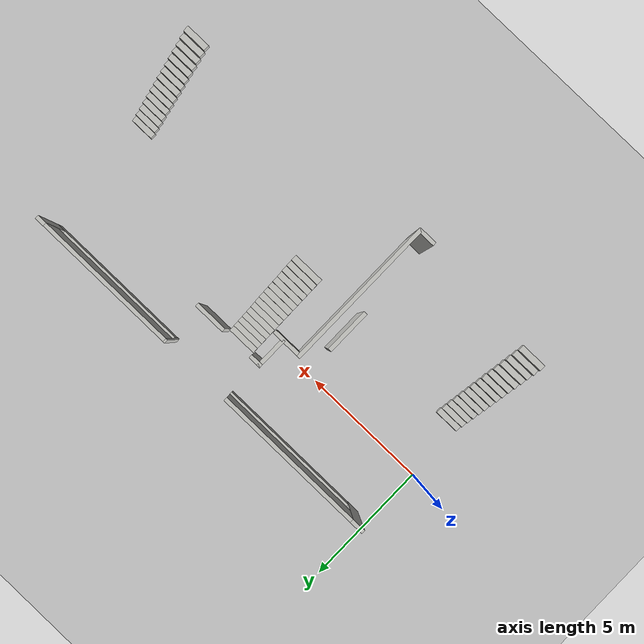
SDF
<sdf version="1.7">
 <world name="default">
  <model name="ground_plane">
   <static>1</static>
   <link name="link">
    <collision name="collision">
     <geometry><plane><normal>0 0 1</normal><size>100 100</size></plane></geometry>
     <surface>
      <contact><collide_bitmask>65535</collide_bitmask></contact>
      <friction><ode><mu>100</mu><mu2>50</mu2></ode></friction>
     </surface>
    </collision>
    <visual name="visual">
     <cast_shadows>0</cast_shadows>
     <geometry><plane><normal>0 0 1</normal><size>100 100</size></plane></geometry>
     <material>
      <script><uri>file://media/materials/scripts/gazebo.material</uri><name>Gazebo/Grey</name></script>
     </material>
    </visual>
   </link>
  </model>
  <model name="SUST_IICT">
   <pose>8.32781 0.748146 0 0 -0 0</pose>
   <link name="Stairs_0">
    <visual name="Stairs_0_Visual_0">
     <pose>-0.342216 -0.026603 0.083333 0 -0 0</pose>
     <geometry><box><size>1.2128 0.233333 0.166667</size></box></geometry>
     <material>
      <script><uri>file://media/materials/scripts/gazebo.material</uri><name>Gazebo/CeilingTiled</name></script>
      <ambient>1 0.764706 0.305882 1</ambient>
     </material>
     <meta><layer>0</layer></meta>
    </visual>
    <collision name="Stairs_0_Collision_0">
     <geometry><box><size>1.2128 0.233333 0.166667</size></box></geometry>
     <pose>-0.342216 -0.026603 0.083333 0 -0 0</pose>
    </collision>
    <visual name="Stairs_0_Visual_1">
     <pose>-0.342216 -0.259936 0.25 0 -0 0</pose>
     <geometry><box><size>1.2128 0.233333 0.166667</size></box></geometry>
     <material>
      <script><uri>file://media/materials/scripts/gazebo.material</uri><name>Gazebo/CeilingTiled</name></script>
      <ambient>1 0.764706 0.305882 1</ambient>
     </material>
     <meta><layer>0</layer></meta>
    </visual>
    <collision name="Stairs_0_Collision_1">
     <geometry><box><size>1.2128 0.233333 0.166667</size></box></geometry>
     <pose>-0.342216 -0.259936 0.25 0 -0 0</pose>
    </collision>
    <visual name="Stairs_0_Visual_2">
     <pose>-0.342216 -0.49327 0.416667 0 -0 0</pose>
     <geometry><box><size>1.2128 0.233333 0.166667</size></box></geometry>
     <material>
      <script><uri>file://media/materials/scripts/gazebo.material</uri><name>Gazebo/CeilingTiled</name></script>
      <ambient>1 0.764706 0.305882 1</ambient>
     </material>
     <meta><layer>0</layer></meta>
    </visual>
    <collision name="Stairs_0_Collision_2">
     <geometry><box><size>1.2128 0.233333 0.166667</size></box></geometry>
     <pose>-0.342216 -0.49327 0.416667 0 -0 0</pose>
    </collision>
    <visual name="Stairs_0_Visual_3">
     <pose>-0.342216 -0.726603 0.583333 0 -0 0</pose>
     <geometry><box><size>1.2128 0.233333 0.166667</size></box></geometry>
     <material>
      <script><uri>file://media/materials/scripts/gazebo.material</uri><name>Gazebo/CeilingTiled</name></script>
      <ambient>1 0.764706 0.305882 1</ambient>
     </material>
     <meta><layer>0</layer></meta>
    </visual>
    <collision name="Stairs_0_Collision_3">
     <geometry><box><size>1.2128 0.233333 0.166667</size></box></geometry>
     <pose>-0.342216 -0.726603 0.583333 0 -0 0</pose>
    </collision>
    <visual name="Stairs_0_Visual_4">
     <pose>-0.342216 -0.959937 0.75 0 -0 0</pose>
     <geometry><box><size>1.2128 0.233333 0.166667</size></box></geometry>
     <material>
      <script><uri>file://media/materials/scripts/gazebo.material</uri><name>Gazebo/CeilingTiled</name></script>
      <ambient>1 0.764706 0.305882 1</ambient>
     </material>
     <meta><layer>0</layer></meta>
    </visual>
    <collision name="Stairs_0_Collision_4">
     <geometry><box><size>1.2128 0.233333 0.166667</size></box></geometry>
     <pose>-0.342216 -0.959937 0.75 0 -0 0</pose>
    </collision>
    <visual name="Stairs_0_Visual_5">
     <pose>-0.342216 -1.19327 0.916667 0 -0 0</pose>
     <geometry><box><size>1.2128 0.233333 0.166667</size></box></geometry>
     <material>
      <script><uri>file://media/materials/scripts/gazebo.material</uri><name>Gazebo/CeilingTiled</name></script>
      <ambient>1 0.764706 0.305882 1</ambient>
     </material>
     <meta><layer>0</layer></meta>
    </visual>
    <collision name="Stairs_0_Collision_5">
     <geometry><box><size>1.2128 0.233333 0.166667</size></box></geometry>
     <pose>-0.342216 -1.19327 0.916667 0 -0 0</pose>
    </collision>
    <visual name="Stairs_0_Visual_6">
     <pose>-0.342216 -1.4266 1.08333 0 -0 0</pose>
     <geometry><box><size>1.2128 0.233333 0.166667</size></box></geometry>
     <material>
      <script><uri>file://media/materials/scripts/gazebo.material</uri><name>Gazebo/CeilingTiled</name></script>
      <ambient>1 0.764706 0.305882 1</ambient>
     </material>
     <meta><layer>0</layer></meta>
    </visual>
    <collision name="Stairs_0_Collision_6">
     <geometry><box><size>1.2128 0.233333 0.166667</size></box></geometry>
     <pose>-0.342216 -1.4266 1.08333 0 -0 0</pose>
    </collision>
    <visual name="Stairs_0_Visual_7">
     <pose>-0.342216 -1.65994 1.25 0 -0 0</pose>
     <geometry><box><size>1.2128 0.233333 0.166667</size></box></geometry>
     <material>
      <script><uri>file://media/materials/scripts/gazebo.material</uri><name>Gazebo/CeilingTiled</name></script>
      <ambient>1 0.764706 0.305882 1</ambient>
     </material>
     <meta><layer>0</layer></meta>
    </visual>
    <collision name="Stairs_0_Collision_7">
     <geometry><box><size>1.2128 0.233333 0.166667</size></box></geometry>
     <pose>-0.342216 -1.65994 1.25 0 -0 0</pose>
    </collision>
    <visual name="Stairs_0_Visual_8">
     <pose>-0.342216 -1.89327 1.41667 0 -0 0</pose>
     <geometry><box><size>1.2128 0.233333 0.166667</size></box></geometry>
     <material>
      <script><uri>file://media/materials/scripts/gazebo.material</uri><name>Gazebo/CeilingTiled</name></script>
      <ambient>1 0.764706 0.305882 1</ambient>
     </material>
     <meta><layer>0</layer></meta>
    </visual>
    <collision name="Stairs_0_Collision_8">
     <geometry><box><size>1.2128 0.233333 0.166667</size></box></geometry>
     <pose>-0.342216 -1.89327 1.41667 0 -0 0</pose>
    </collision>
    <visual name="Stairs_0_Visual_9">
     <pose>-0.342216 -2.1266 1.58333 0 -0 0</pose>
     <geometry><box><size>1.2128 0.233333 0.166667</size></box></geometry>
     <material>
      <script><uri>file://media/materials/scripts/gazebo.material</uri><name>Gazebo/CeilingTiled</name></script>
      <ambient>1 0.764706 0.305882 1</ambient>
     </material>
     <meta><layer>0</layer></meta>
    </visual>
    <collision name="Stairs_0_Collision_9">
     <geometry><box><size>1.2128 0.233333 0.166667</size></box></geometry>
     <pose>-0.342216 -2.1266 1.58333 0 -0 0</pose>
    </collision>
    <visual name="Stairs_0_Visual_10">
     <pose>-0.342216 -2.35994 1.75 0 -0 0</pose>
     <geometry><box><size>1.2128 0.233333 0.166667</size></box></geometry>
     <material>
      <script><uri>file://media/materials/scripts/gazebo.material</uri><name>Gazebo/CeilingTiled</name></script>
      <ambient>1 0.764706 0.305882 1</ambient>
     </material>
     <meta><layer>0</layer></meta>
    </visual>
    <collision name="Stairs_0_Collision_10">
     <geometry><box><size>1.2128 0.233333 0.166667</size></box></geometry>
     <pose>-0.342216 -2.35994 1.75 0 -0 0</pose>
    </collision>
    <visual name="Stairs_0_Visual_11">
     <pose>-0.342216 -2.59327 1.91667 0 -0 0</pose>
     <geometry><box><size>1.2128 0.233333 0.166667</size></box></geometry>
     <material>
      <script><uri>file://media/materials/scripts/gazebo.material</uri><name>Gazebo/CeilingTiled</name></script>
      <ambient>1 0.764706 0.305882 1</ambient>
     </material>
     <meta><layer>0</layer></meta>
    </visual>
    <collision name="Stairs_0_Collision_11">
     <geometry><box><size>1.2128 0.233333 0.166667</size></box></geometry>
     <pose>-0.342216 -2.59327 1.91667 0 -0 0</pose>
    </collision>
    <visual name="Stairs_0_Visual_12">
     <pose>-0.342216 -2.8266 2.08333 0 -0 0</pose>
     <geometry><box><size>1.2128 0.233333 0.166667</size></box></geometry>
     <material>
      <script><uri>file://media/materials/scripts/gazebo.material</uri><name>Gazebo/CeilingTiled</name></script>
      <ambient>1 0.764706 0.305882 1</ambient>
     </material>
     <meta><layer>0</layer></meta>
    </visual>
    <collision name="Stairs_0_Collision_12">
     <geometry><box><size>1.2128 0.233333 0.166667</size></box></geometry>
     <pose>-0.342216 -2.8266 2.08333 0 -0 0</pose>
    </collision>
    <visual name="Stairs_0_Visual_13">
     <pose>-0.342216 -3.05994 2.25 0 -0 0</pose>
     <geometry><box><size>1.2128 0.233333 0.166667</size></box></geometry>
     <material>
      <script><uri>file://media/materials/scripts/gazebo.material</uri><name>Gazebo/CeilingTiled</name></script>
      <ambient>1 0.764706 0.305882 1</ambient>
     </material>
     <meta><layer>0</layer></meta>
    </visual>
    <collision name="Stairs_0_Collision_13">
     <geometry><box><size>1.2128 0.233333 0.166667</size></box></geometry>
     <pose>-0.342216 -3.05994 2.25 0 -0 0</pose>
    </collision>
    <visual name="Stairs_0_Visual_14">
     <pose>-0.342216 -3.29327 2.41667 0 -0 0</pose>
     <geometry><box><size>1.2128 0.233333 0.166667</size></box></geometry>
     <material>
      <script><uri>file://media/materials/scripts/gazebo.material</uri><name>Gazebo/CeilingTiled</name></script>
      <ambient>1 0.764706 0.305882 1</ambient>
     </material>
     <meta><layer>0</layer></meta>
    </visual>
    <collision name="Stairs_0_Collision_14">
     <geometry><box><size>1.2128 0.233333 0.166667</size></box></geometry>
     <pose>-0.342216 -3.29327 2.41667 0 -0 0</pose>
    </collision>
   </link>
   <link name="Stairs_1">
    <visual name="Stairs_1_Visual_0">
     <pose>-7.84347 -3.13883 0.083333 0 -0 0</pose>
     <geometry><box><size>1 0.233333 0.166667</size></box></geometry>
     <material>
      <script><uri>file://media/materials/scripts/gazebo.material</uri><name>Gazebo/CeilingTiled</name></script>
      <ambient>1 0.764706 0.305882 1</ambient>
     </material>
     <meta><layer>0</layer></meta>
    </visual>
    <collision name="Stairs_1_Collision_0">
     <geometry><box><size>1 0.233333 0.166667</size></box></geometry>
     <pose>-7.84347 -3.13883 0.083333 0 -0 0</pose>
    </collision>
    <visual name="Stairs_1_Visual_1">
     <pose>-7.84347 -3.37216 0.25 0 -0 0</pose>
     <geometry><box><size>1 0.233333 0.166667</size></box></geometry>
     <material>
      <script><uri>file://media/materials/scripts/gazebo.material</uri><name>Gazebo/CeilingTiled</name></script>
      <ambient>1 0.764706 0.305882 1</ambient>
     </material>
     <meta><layer>0</layer></meta>
    </visual>
    <collision name="Stairs_1_Collision_1">
     <geometry><box><size>1 0.233333 0.166667</size></box></geometry>
     <pose>-7.84347 -3.37216 0.25 0 -0 0</pose>
    </collision>
    <visual name="Stairs_1_Visual_2">
     <pose>-7.84347 -3.60549 0.416667 0 -0 0</pose>
     <geometry><box><size>1 0.233333 0.166667</size></box></geometry>
     <material>
      <script><uri>file://media/materials/scripts/gazebo.material</uri><name>Gazebo/CeilingTiled</name></script>
      <ambient>1 0.764706 0.305882 1</ambient>
     </material>
     <meta><layer>0</layer></meta>
    </visual>
    <collision name="Stairs_1_Collision_2">
     <geometry><box><size>1 0.233333 0.166667</size></box></geometry>
     <pose>-7.84347 -3.60549 0.416667 0 -0 0</pose>
    </collision>
    <visual name="Stairs_1_Visual_3">
     <pose>-7.84347 -3.83883 0.583333 0 -0 0</pose>
     <geometry><box><size>1 0.233333 0.166667</size></box></geometry>
     <material>
      <script><uri>file://media/materials/scripts/gazebo.material</uri><name>Gazebo/CeilingTiled</name></script>
      <ambient>1 0.764706 0.305882 1</ambient>
     </material>
     <meta><layer>0</layer></meta>
    </visual>
    <collision name="Stairs_1_Collision_3">
     <geometry><box><size>1 0.233333 0.166667</size></box></geometry>
     <pose>-7.84347 -3.83883 0.583333 0 -0 0</pose>
    </collision>
    <visual name="Stairs_1_Visual_4">
     <pose>-7.84347 -4.07216 0.75 0 -0 0</pose>
     <geometry><box><size>1 0.233333 0.166667</size></box></geometry>
     <material>
      <script><uri>file://media/materials/scripts/gazebo.material</uri><name>Gazebo/CeilingTiled</name></script>
      <ambient>1 0.764706 0.305882 1</ambient>
     </material>
     <meta><layer>0</layer></meta>
    </visual>
    <collision name="Stairs_1_Collision_4">
     <geometry><box><size>1 0.233333 0.166667</size></box></geometry>
     <pose>-7.84347 -4.07216 0.75 0 -0 0</pose>
    </collision>
    <visual name="Stairs_1_Visual_5">
     <pose>-7.84347 -4.30549 0.916667 0 -0 0</pose>
     <geometry><box><size>1 0.233333 0.166667</size></box></geometry>
     <material>
      <script><uri>file://media/materials/scripts/gazebo.material</uri><name>Gazebo/CeilingTiled</name></script>
      <ambient>1 0.764706 0.305882 1</ambient>
     </material>
     <meta><layer>0</layer></meta>
    </visual>
    <collision name="Stairs_1_Collision_5">
     <geometry><box><size>1 0.233333 0.166667</size></box></geometry>
     <pose>-7.84347 -4.30549 0.916667 0 -0 0</pose>
    </collision>
    <visual name="Stairs_1_Visual_6">
     <pose>-7.84347 -4.53883 1.08333 0 -0 0</pose>
     <geometry><box><size>1 0.233333 0.166667</size></box></geometry>
     <material>
      <script><uri>file://media/materials/scripts/gazebo.material</uri><name>Gazebo/CeilingTiled</name></script>
      <ambient>1 0.764706 0.305882 1</ambient>
     </material>
     <meta><layer>0</layer></meta>
    </visual>
    <collision name="Stairs_1_Collision_6">
     <geometry><box><size>1 0.233333 0.166667</size></box></geometry>
     <pose>-7.84347 -4.53883 1.08333 0 -0 0</pose>
    </collision>
    <visual name="Stairs_1_Visual_7">
     <pose>-7.84347 -4.77216 1.25 0 -0 0</pose>
     <geometry><box><size>1 0.233333 0.166667</size></box></geometry>
     <material>
      <script><uri>file://media/materials/scripts/gazebo.material</uri><name>Gazebo/CeilingTiled</name></script>
      <ambient>1 0.764706 0.305882 1</ambient>
     </material>
     <meta><layer>0</layer></meta>
    </visual>
    <collision name="Stairs_1_Collision_7">
     <geometry><box><size>1 0.233333 0.166667</size></box></geometry>
     <pose>-7.84347 -4.77216 1.25 0 -0 0</pose>
    </collision>
    <visual name="Stairs_1_Visual_8">
     <pose>-7.84347 -5.00549 1.41667 0 -0 0</pose>
     <geometry><box><size>1 0.233333 0.166667</size></box></geometry>
     <material>
      <script><uri>file://media/materials/scripts/gazebo.material</uri><name>Gazebo/CeilingTiled</name></script>
      <ambient>1 0.764706 0.305882 1</ambient>
     </material>
     <meta><layer>0</layer></meta>
    </visual>
    <collision name="Stairs_1_Collision_8">
     <geometry><box><size>1 0.233333 0.166667</size></box></geometry>
     <pose>-7.84347 -5.00549 1.41667 0 -0 0</pose>
    </collision>
    <visual name="Stairs_1_Visual_9">
     <pose>-7.84347 -5.23883 1.58333 0 -0 0</pose>
     <geometry><box><size>1 0.233333 0.166667</size></box></geometry>
     <material>
      <script><uri>file://media/materials/scripts/gazebo.material</uri><name>Gazebo/CeilingTiled</name></script>
      <ambient>1 0.764706 0.305882 1</ambient>
     </material>
     <meta><layer>0</layer></meta>
    </visual>
    <collision name="Stairs_1_Collision_9">
     <geometry><box><size>1 0.233333 0.166667</size></box></geometry>
     <pose>-7.84347 -5.23883 1.58333 0 -0 0</pose>
    </collision>
    <visual name="Stairs_1_Visual_10">
     <pose>-7.84347 -5.47216 1.75 0 -0 0</pose>
     <geometry><box><size>1 0.233333 0.166667</size></box></geometry>
     <material>
      <script><uri>file://media/materials/scripts/gazebo.material</uri><name>Gazebo/CeilingTiled</name></script>
      <ambient>1 0.764706 0.305882 1</ambient>
     </material>
     <meta><layer>0</layer></meta>
    </visual>
    <collision name="Stairs_1_Collision_10">
     <geometry><box><size>1 0.233333 0.166667</size></box></geometry>
     <pose>-7.84347 -5.47216 1.75 0 -0 0</pose>
    </collision>
    <visual name="Stairs_1_Visual_11">
     <pose>-7.84347 -5.70549 1.91667 0 -0 0</pose>
     <geometry><box><size>1 0.233333 0.166667</size></box></geometry>
     <material>
      <script><uri>file://media/materials/scripts/gazebo.material</uri><name>Gazebo/CeilingTiled</name></script>
      <ambient>1 0.764706 0.305882 1</ambient>
     </material>
     <meta><layer>0</layer></meta>
    </visual>
    <collision name="Stairs_1_Collision_11">
     <geometry><box><size>1 0.233333 0.166667</size></box></geometry>
     <pose>-7.84347 -5.70549 1.91667 0 -0 0</pose>
    </collision>
    <visual name="Stairs_1_Visual_12">
     <pose>-7.84347 -5.93883 2.08333 0 -0 0</pose>
     <geometry><box><size>1 0.233333 0.166667</size></box></geometry>
     <material>
      <script><uri>file://media/materials/scripts/gazebo.material</uri><name>Gazebo/CeilingTiled</name></script>
      <ambient>1 0.764706 0.305882 1</ambient>
     </material>
     <meta><layer>0</layer></meta>
    </visual>
    <collision name="Stairs_1_Collision_12">
     <geometry><box><size>1 0.233333 0.166667</size></box></geometry>
     <pose>-7.84347 -5.93883 2.08333 0 -0 0</pose>
    </collision>
    <visual name="Stairs_1_Visual_13">
     <pose>-7.84347 -6.17216 2.25 0 -0 0</pose>
     <geometry><box><size>1 0.233333 0.166667</size></box></geometry>
     <material>
      <script><uri>file://media/materials/scripts/gazebo.material</uri><name>Gazebo/CeilingTiled</name></script>
      <ambient>1 0.764706 0.305882 1</ambient>
     </material>
     <meta><layer>0</layer></meta>
    </visual>
    <collision name="Stairs_1_Collision_13">
     <geometry><box><size>1 0.233333 0.166667</size></box></geometry>
     <pose>-7.84347 -6.17216 2.25 0 -0 0</pose>
    </collision>
    <visual name="Stairs_1_Visual_14">
     <pose>-7.84347 -6.40549 2.41667 0 -0 0</pose>
     <geometry><box><size>1 0.233333 0.166667</size></box></geometry>
     <material>
      <script><uri>file://media/materials/scripts/gazebo.material</uri><name>Gazebo/CeilingTiled</name></script>
      <ambient>1 0.764706 0.305882 1</ambient>
     </material>
     <meta><layer>0</layer></meta>
    </visual>
    <collision name="Stairs_1_Collision_14">
     <geometry><box><size>1 0.233333 0.166667</size></box></geometry>
     <pose>-7.84347 -6.40549 2.41667 0 -0 0</pose>
    </collision>
   </link>
   <link name="Stairs_2">
    <visual name="Stairs_2_Visual_0">
     <pose>7.78414 -3.11134 0.083333 0 -0 0</pose>
     <geometry><box><size>0.9734 0.23156 0.166667</size></box></geometry>
     <material>
      <script><uri>file://media/materials/scripts/gazebo.material</uri><name>Gazebo/CeilingTiled</name></script>
      <ambient>1 0.764706 0.305882 1</ambient>
     </material>
     <meta><layer>0</layer></meta>
    </visual>
    <collision name="Stairs_2_Collision_0">
     <geometry><box><size>0.9734 0.23156 0.166667</size></box></geometry>
     <pose>7.78414 -3.11134 0.083333 0 -0 0</pose>
    </collision>
    <visual name="Stairs_2_Visual_1">
     <pose>7.78414 -3.3429 0.25 0 -0 0</pose>
     <geometry><box><size>0.9734 0.23156 0.166667</size></box></geometry>
     <material>
      <script><uri>file://media/materials/scripts/gazebo.material</uri><name>Gazebo/CeilingTiled</name></script>
      <ambient>1 0.764706 0.305882 1</ambient>
     </material>
     <meta><layer>0</layer></meta>
    </visual>
    <collision name="Stairs_2_Collision_1">
     <geometry><box><size>0.9734 0.23156 0.166667</size></box></geometry>
     <pose>7.78414 -3.3429 0.25 0 -0 0</pose>
    </collision>
    <visual name="Stairs_2_Visual_2">
     <pose>7.78414 -3.57446 0.416667 0 -0 0</pose>
     <geometry><box><size>0.9734 0.23156 0.166667</size></box></geometry>
     <material>
      <script><uri>file://media/materials/scripts/gazebo.material</uri><name>Gazebo/CeilingTiled</name></script>
      <ambient>1 0.764706 0.305882 1</ambient>
     </material>
     <meta><layer>0</layer></meta>
    </visual>
    <collision name="Stairs_2_Collision_2">
     <geometry><box><size>0.9734 0.23156 0.166667</size></box></geometry>
     <pose>7.78414 -3.57446 0.416667 0 -0 0</pose>
    </collision>
    <visual name="Stairs_2_Visual_3">
     <pose>7.78414 -3.80602 0.583333 0 -0 0</pose>
     <geometry><box><size>0.9734 0.23156 0.166667</size></box></geometry>
     <material>
      <script><uri>file://media/materials/scripts/gazebo.material</uri><name>Gazebo/CeilingTiled</name></script>
      <ambient>1 0.764706 0.305882 1</ambient>
     </material>
     <meta><layer>0</layer></meta>
    </visual>
    <collision name="Stairs_2_Collision_3">
     <geometry><box><size>0.9734 0.23156 0.166667</size></box></geometry>
     <pose>7.78414 -3.80602 0.583333 0 -0 0</pose>
    </collision>
    <visual name="Stairs_2_Visual_4">
     <pose>7.78414 -4.03758 0.75 0 -0 0</pose>
     <geometry><box><size>0.9734 0.23156 0.166667</size></box></geometry>
     <material>
      <script><uri>file://media/materials/scripts/gazebo.material</uri><name>Gazebo/CeilingTiled</name></script>
      <ambient>1 0.764706 0.305882 1</ambient>
     </material>
     <meta><layer>0</layer></meta>
    </visual>
    <collision name="Stairs_2_Collision_4">
     <geometry><box><size>0.9734 0.23156 0.166667</size></box></geometry>
     <pose>7.78414 -4.03758 0.75 0 -0 0</pose>
    </collision>
    <visual name="Stairs_2_Visual_5">
     <pose>7.78414 -4.26914 0.916667 0 -0 0</pose>
     <geometry><box><size>0.9734 0.23156 0.166667</size></box></geometry>
     <material>
      <script><uri>file://media/materials/scripts/gazebo.material</uri><name>Gazebo/CeilingTiled</name></script>
      <ambient>1 0.764706 0.305882 1</ambient>
     </material>
     <meta><layer>0</layer></meta>
    </visual>
    <collision name="Stairs_2_Collision_5">
     <geometry><box><size>0.9734 0.23156 0.166667</size></box></geometry>
     <pose>7.78414 -4.26914 0.916667 0 -0 0</pose>
    </collision>
    <visual name="Stairs_2_Visual_6">
     <pose>7.78414 -4.5007 1.08333 0 -0 0</pose>
     <geometry><box><size>0.9734 0.23156 0.166667</size></box></geometry>
     <material>
      <script><uri>file://media/materials/scripts/gazebo.material</uri><name>Gazebo/CeilingTiled</name></script>
      <ambient>1 0.764706 0.305882 1</ambient>
     </material>
     <meta><layer>0</layer></meta>
    </visual>
    <collision name="Stairs_2_Collision_6">
     <geometry><box><size>0.9734 0.23156 0.166667</size></box></geometry>
     <pose>7.78414 -4.5007 1.08333 0 -0 0</pose>
    </collision>
    <visual name="Stairs_2_Visual_7">
     <pose>7.78414 -4.73226 1.25 0 -0 0</pose>
     <geometry><box><size>0.9734 0.23156 0.166667</size></box></geometry>
     <material>
      <script><uri>file://media/materials/scripts/gazebo.material</uri><name>Gazebo/CeilingTiled</name></script>
      <ambient>1 0.764706 0.305882 1</ambient>
     </material>
     <meta><layer>0</layer></meta>
    </visual>
    <collision name="Stairs_2_Collision_7">
     <geometry><box><size>0.9734 0.23156 0.166667</size></box></geometry>
     <pose>7.78414 -4.73226 1.25 0 -0 0</pose>
    </collision>
    <visual name="Stairs_2_Visual_8">
     <pose>7.78414 -4.96382 1.41667 0 -0 0</pose>
     <geometry><box><size>0.9734 0.23156 0.166667</size></box></geometry>
     <material>
      <script><uri>file://media/materials/scripts/gazebo.material</uri><name>Gazebo/CeilingTiled</name></script>
      <ambient>1 0.764706 0.305882 1</ambient>
     </material>
     <meta><layer>0</layer></meta>
    </visual>
    <collision name="Stairs_2_Collision_8">
     <geometry><box><size>0.9734 0.23156 0.166667</size></box></geometry>
     <pose>7.78414 -4.96382 1.41667 0 -0 0</pose>
    </collision>
    <visual name="Stairs_2_Visual_9">
     <pose>7.78414 -5.19538 1.58333 0 -0 0</pose>
     <geometry><box><size>0.9734 0.23156 0.166667</size></box></geometry>
     <material>
      <script><uri>file://media/materials/scripts/gazebo.material</uri><name>Gazebo/CeilingTiled</name></script>
      <ambient>1 0.764706 0.305882 1</ambient>
     </material>
     <meta><layer>0</layer></meta>
    </visual>
    <collision name="Stairs_2_Collision_9">
     <geometry><box><size>0.9734 0.23156 0.166667</size></box></geometry>
     <pose>7.78414 -5.19538 1.58333 0 -0 0</pose>
    </collision>
    <visual name="Stairs_2_Visual_10">
     <pose>7.78414 -5.42694 1.75 0 -0 0</pose>
     <geometry><box><size>0.9734 0.23156 0.166667</size></box></geometry>
     <material>
      <script><uri>file://media/materials/scripts/gazebo.material</uri><name>Gazebo/CeilingTiled</name></script>
      <ambient>1 0.764706 0.305882 1</ambient>
     </material>
     <meta><layer>0</layer></meta>
    </visual>
    <collision name="Stairs_2_Collision_10">
     <geometry><box><size>0.9734 0.23156 0.166667</size></box></geometry>
     <pose>7.78414 -5.42694 1.75 0 -0 0</pose>
    </collision>
    <visual name="Stairs_2_Visual_11">
     <pose>7.78414 -5.6585 1.91667 0 -0 0</pose>
     <geometry><box><size>0.9734 0.23156 0.166667</size></box></geometry>
     <material>
      <script><uri>file://media/materials/scripts/gazebo.material</uri><name>Gazebo/CeilingTiled</name></script>
      <ambient>1 0.764706 0.305882 1</ambient>
     </material>
     <meta><layer>0</layer></meta>
    </visual>
    <collision name="Stairs_2_Collision_11">
     <geometry><box><size>0.9734 0.23156 0.166667</size></box></geometry>
     <pose>7.78414 -5.6585 1.91667 0 -0 0</pose>
    </collision>
    <visual name="Stairs_2_Visual_12">
     <pose>7.78414 -5.89006 2.08333 0 -0 0</pose>
     <geometry><box><size>0.9734 0.23156 0.166667</size></box></geometry>
     <material>
      <script><uri>file://media/materials/scripts/gazebo.material</uri><name>Gazebo/CeilingTiled</name></script>
      <ambient>1 0.764706 0.305882 1</ambient>
     </material>
     <meta><layer>0</layer></meta>
    </visual>
    <collision name="Stairs_2_Collision_12">
     <geometry><box><size>0.9734 0.23156 0.166667</size></box></geometry>
     <pose>7.78414 -5.89006 2.08333 0 -0 0</pose>
    </collision>
    <visual name="Stairs_2_Visual_13">
     <pose>7.78414 -6.12162 2.25 0 -0 0</pose>
     <geometry><box><size>0.9734 0.23156 0.166667</size></box></geometry>
     <material>
      <script><uri>file://media/materials/scripts/gazebo.material</uri><name>Gazebo/CeilingTiled</name></script>
      <ambient>1 0.764706 0.305882 1</ambient>
     </material>
     <meta><layer>0</layer></meta>
    </visual>
    <collision name="Stairs_2_Collision_13">
     <geometry><box><size>0.9734 0.23156 0.166667</size></box></geometry>
     <pose>7.78414 -6.12162 2.25 0 -0 0</pose>
    </collision>
    <visual name="Stairs_2_Visual_14">
     <pose>7.78414 -6.35318 2.41667 0 -0 0</pose>
     <geometry><box><size>0.9734 0.23156 0.166667</size></box></geometry>
     <material>
      <script><uri>file://media/materials/scripts/gazebo.material</uri><name>Gazebo/CeilingTiled</name></script>
      <ambient>1 0.764706 0.305882 1</ambient>
     </material>
     <meta><layer>0</layer></meta>
    </visual>
    <collision name="Stairs_2_Collision_14">
     <geometry><box><size>0.9734 0.23156 0.166667</size></box></geometry>
     <pose>7.78414 -6.35318 2.41667 0 -0 0</pose>
    </collision>
   </link>
   <link name="Wall_147">
    <collision name="Wall_147_Collision">
     <geometry><box><size>0.5 0.15 2.5</size></box></geometry>
     <pose>0 0 1.25 0 -0 0</pose>
    </collision>
    <visual name="Wall_147_Visual">
     <pose>0 0 1.25 0 -0 0</pose>
     <geometry><box><size>0.5 0.15 2.5</size></box></geometry>
     <material>
      <script><uri>file://media/materials/scripts/gazebo.material</uri><name>Gazebo/CeilingTiled</name></script>
      <ambient>1 0.764706 0.305882 1</ambient>
     </material>
     <meta><layer>0</layer></meta>
    </visual>
    <pose>-1.24107 0.100337 0 0 -0 0</pose>
   </link>
   <link name="Wall_149">
    <collision name="Wall_149_Collision">
     <geometry><box><size>1.25 0.15 2.5</size></box></geometry>
     <pose>0 0 1.25 0 -0 0</pose>
    </collision>
    <visual name="Wall_149_Visual">
     <pose>0 0 1.25 0 -0 0</pose>
     <geometry><box><size>1.25 0.15 2.5</size></box></geometry>
     <material>
      <script><uri>file://media/materials/scripts/gazebo.material</uri><name>Gazebo/CeilingTiled</name></script>
      <ambient>1 0.764706 0.305882 1</ambient>
     </material>
     <meta><layer>0</layer></meta>
    </visual>
    <pose>0.883935 0.100337 0 0 -0 3.14159</pose>
   </link>
   <link name="Wall_151">
    <collision name="Wall_151_Collision">
     <geometry><box><size>1.25 0.15 2.5</size></box></geometry>
     <pose>0 0 1.25 0 -0 0</pose>
    </collision>
    <visual name="Wall_151_Visual">
     <pose>0 0 1.25 0 -0 0</pose>
     <geometry><box><size>1.25 0.15 2.5</size></box></geometry>
     <material>
      <script><uri>file://media/materials/scripts/gazebo.material</uri><name>Gazebo/CeilingTiled</name></script>
      <ambient>1 0.764706 0.305882 1</ambient>
     </material>
     <meta><layer>0</layer></meta>
    </visual>
    <pose>-1.625 -1.05897 0 0 -0 0</pose>
   </link>
   <link name="Wall_37">
    <collision name="Wall_37_Collision">
     <geometry><box><size>6 0.15 2.5</size></box></geometry>
     <pose>0 0 1.25 0 -0 0</pose>
    </collision>
    <visual name="Wall_37_Visual">
     <pose>0 0 1.25 0 -0 0</pose>
     <geometry><box><size>6 0.15 2.5</size></box></geometry>
     <material>
      <script><uri>file://media/materials/scripts/gazebo.material</uri><name>Gazebo/CeilingTiled</name></script>
      <ambient>1 0.764706 0.305882 1</ambient>
     </material>
     <meta><layer>0</layer></meta>
    </visual>
    <pose>-2.175 -3.98397 0 0 -0 -1.5708</pose>
   </link>
   <link name="Wall_38">
    <collision name="Wall_38_Collision">
     <geometry><box><size>0.75 0.15 2.5</size></box></geometry>
     <pose>0 0 1.25 0 -0 0</pose>
    </collision>
    <visual name="Wall_38_Visual">
     <pose>0 0 1.25 0 -0 0</pose>
     <geometry><box><size>0.75 0.15 2.5</size></box></geometry>
     <material>
      <script><uri>file://media/materials/scripts/gazebo.material</uri><name>Gazebo/CeilingTiled</name></script>
      <ambient>1 0.764706 0.305882 1</ambient>
     </material>
     <meta><layer>0</layer></meta>
    </visual>
    <pose>-2.475 -6.90897 0 0 -0 3.14159</pose>
   </link>
   <link name="Wall_60">
    <pose>-0.173959 1.71547 0 0 -0 0</pose>
    <visual name="Wall_60_Visual_0">
     <pose>-7.35515 0 1.25 0 -0 0</pose>
     <geometry><box><size>0.539694 0.15 2.5</size></box></geometry>
     <material>
      <script><uri>file://media/materials/scripts/gazebo.material</uri><name>Gazebo/CeilingTiled</name></script>
      <ambient>1 0.764706 0.305882 1</ambient>
     </material>
     <meta><layer>0</layer></meta>
    </visual>
    <collision name="Wall_60_Collision_0">
     <geometry><box><size>0.539694 0.15 2.5</size></box></geometry>
     <pose>-7.35515 0 1.25 0 -0 0</pose>
    </collision>
    <visual name="Wall_60_Visual_1">
     <pose>1.59906 0 1.25 0 -0 0</pose>
     <geometry><box><size>0.081007 0.15 2.5</size></box></geometry>
     <material>
      <script><uri>file://media/materials/scripts/gazebo.material</uri><name>Gazebo/CeilingTiled</name></script>
      <ambient>1 0.764706 0.305882 1</ambient>
     </material>
     <meta><layer>0</layer></meta>
    </visual>
    <collision name="Wall_60_Collision_1">
     <geometry><box><size>0.081007 0.15 2.5</size></box></geometry>
     <pose>1.59906 0 1.25 0 -0 0</pose>
    </collision>
    <visual name="Wall_60_Visual_2">
     <pose>-4.14438 0 0.25 0 -0 0</pose>
     <geometry><box><size>5.88184 0.15 0.5</size></box></geometry>
     <material>
      <script><uri>file://media/materials/scripts/gazebo.material</uri><name>Gazebo/CeilingTiled</name></script>
      <ambient>1 0.764706 0.305882 1</ambient>
     </material>
     <meta><layer>0</layer></meta>
    </visual>
    <collision name="Wall_60_Collision_2">
     <geometry><box><size>5.88184 0.15 0.5</size></box></geometry>
     <pose>-4.14438 0 0.25 0 -0 0</pose>
    </collision>
    <visual name="Wall_60_Visual_3">
     <pose>4.63228 0 0.25 0 -0 0</pose>
     <geometry><box><size>5.98544 0.15 0.5</size></box></geometry>
     <material>
      <script><uri>file://media/materials/scripts/gazebo.material</uri><name>Gazebo/CeilingTiled</name></script>
      <ambient>1 0.764706 0.305882 1</ambient>
     </material>
     <meta><layer>0</layer></meta>
    </visual>
    <collision name="Wall_60_Collision_3">
     <geometry><box><size>5.98544 0.15 0.5</size></box></geometry>
     <pose>4.63228 0 0.25 0 -0 0</pose>
    </collision>
    <visual name="Wall_60_Visual_4">
     <pose>7.4396 0 1.5 0 -0 0</pose>
     <geometry><box><size>0.370804 0.15 2</size></box></geometry>
     <material>
      <script><uri>file://media/materials/scripts/gazebo.material</uri><name>Gazebo/CeilingTiled</name></script>
      <ambient>1 0.764706 0.305882 1</ambient>
     </material>
     <meta><layer>0</layer></meta>
    </visual>
    <collision name="Wall_60_Collision_4">
     <geometry><box><size>0.370804 0.15 2</size></box></geometry>
     <pose>7.4396 0 1.5 0 -0 0</pose>
    </collision>
    <visual name="Wall_60_Visual_5">
     <pose>-4.14438 0 1.9 0 -0 0</pose>
     <geometry><box><size>5.88184 0.15 1.2</size></box></geometry>
     <material>
      <script><uri>file://media/materials/scripts/gazebo.material</uri><name>Gazebo/CeilingTiled</name></script>
      <ambient>1 0.764706 0.305882 1</ambient>
     </material>
     <meta><layer>0</layer></meta>
    </visual>
    <collision name="Wall_60_Collision_5">
     <geometry><box><size>5.88184 0.15 1.2</size></box></geometry>
     <pose>-4.14438 0 1.9 0 -0 0</pose>
    </collision>
    <visual name="Wall_60_Visual_6">
     <pose>4.44688 0 1.9 0 -0 0</pose>
     <geometry><box><size>5.61464 0.15 1.2</size></box></geometry>
     <material>
      <script><uri>file://media/materials/scripts/gazebo.material</uri><name>Gazebo/CeilingTiled</name></script>
      <ambient>1 0.764706 0.305882 1</ambient>
     </material>
     <meta><layer>0</layer></meta>
    </visual>
    <collision name="Wall_60_Collision_6">
     <geometry><box><size>5.61464 0.15 1.2</size></box></geometry>
     <pose>4.44688 0 1.9 0 -0 0</pose>
    </collision>
    <visual name="Wall_60_Visual_7">
     <pose>-1.20346 0 2.25 0 -0 0</pose>
     <geometry><box><size>0 0.15 0.5</size></box></geometry>
     <material>
      <script><uri>file://media/materials/scripts/gazebo.material</uri><name>Gazebo/CeilingTiled</name></script>
      <ambient>1 0.764706 0.305882 1</ambient>
     </material>
     <meta><layer>0</layer></meta>
    </visual>
    <collision name="Wall_60_Collision_7">
     <geometry><box><size>0 0.15 0.5</size></box></geometry>
     <pose>-1.20346 0 2.25 0 -0 0</pose>
    </collision>
   </link>
   <link name="Wall_66">
    <collision name="Wall_66_Collision">
     <geometry><box><size>1.25 0.15 2.5</size></box></geometry>
     <pose>0 0 1.25 0 -0 0</pose>
    </collision>
    <visual name="Wall_66_Visual">
     <pose>0 0 1.25 0 -0 0</pose>
     <geometry><box><size>1.25 0.15 2.5</size></box></geometry>
     <material>
      <script><uri>file://media/materials/scripts/gazebo.material</uri><name>Gazebo/CeilingTiled</name></script>
      <ambient>1 0.764706 0.305882 1</ambient>
     </material>
     <meta><layer>0</layer></meta>
    </visual>
    <pose>-1.41606 -0.449663 0 0 -0 1.5708</pose>
   </link>
   <link name="Wall_70">
    <collision name="Wall_70_Collision">
     <geometry><box><size>1.75 0.15 2.5</size></box></geometry>
     <pose>0 0 1.25 0 -0 0</pose>
    </collision>
    <visual name="Wall_70_Visual">
     <pose>0 0 1.25 0 -0 0</pose>
     <geometry><box><size>1.75 0.15 2.5</size></box></geometry>
     <material>
      <script><uri>file://media/materials/scripts/gazebo.material</uri><name>Gazebo/CeilingTiled</name></script>
      <ambient>1 0.764706 0.305882 1</ambient>
     </material>
     <meta><layer>0</layer></meta>
    </visual>
    <pose>-2.775 -2.75897 0 0 -0 1.5708</pose>
   </link>
   <static>1</static>
  </model>
 </world>
</sdf>
